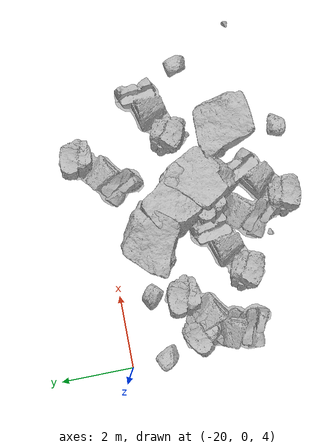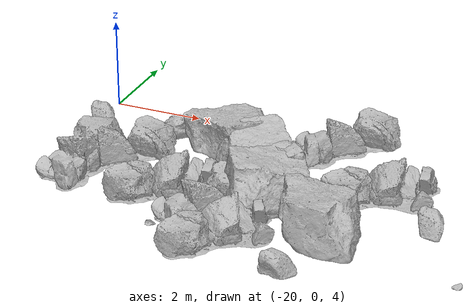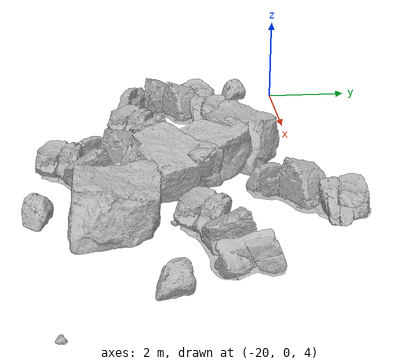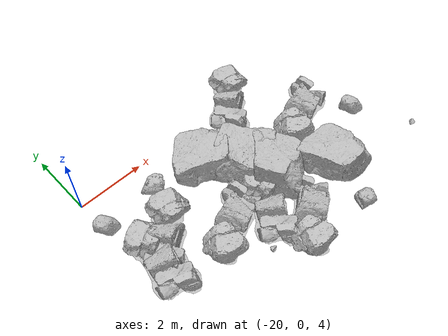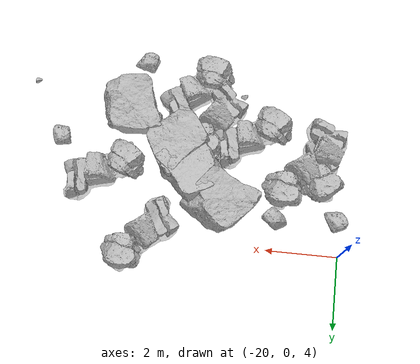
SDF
<sdf version="1.7">
 <world name="marsyard">
  <model name="Rock_2">
   <static>true</static>
   <pose>-15.3373 -2.6823 4.0000 0.0000 0.0000 -0.1930</pose>
   <link name="link">
    <visual name="visual">
     <geometry><mesh><uri>package://rock_generator/rocks_ws/rock_1/meshes/rock_1.stl</uri></mesh></geometry>
    </visual>
    <collision name="collision">
     <geometry><mesh><uri>package://rock_generator/rocks_ws/rock_1/meshes/rock_1.stl</uri></mesh></geometry>
    </collision>
   </link>
  </model>
  <model name="Rock_6">
   <static>true</static>
   <pose>-16.6713 -2.3727 4.0000 0.0000 0.0000 2.2812</pose>
   <link name="link">
    <visual name="visual">
     <geometry><mesh><uri>package://rock_generator/rocks_ws/rock_9/meshes/rock_9.stl</uri></mesh></geometry>
    </visual>
    <collision name="collision">
     <geometry><mesh><uri>package://rock_generator/rocks_ws/rock_9/meshes/rock_9.stl</uri></mesh></geometry>
    </collision>
   </link>
  </model>
  <model name="Rock_55">
   <static>true</static>
   <pose>-14.0027 -3.7306 4.0000 0.0000 0.0000 0.8740</pose>
   <link name="link">
    <visual name="visual">
     <geometry><mesh><uri>package://rock_generator/rocks_ws/rock_1/meshes/rock_1.stl</uri></mesh></geometry>
    </visual>
    <collision name="collision">
     <geometry><mesh><uri>package://rock_generator/rocks_ws/rock_1/meshes/rock_1.stl</uri></mesh></geometry>
    </collision>
   </link>
  </model>
  <model name="Rock_72">
   <static>true</static>
   <pose>-15.6774 -4.5340 4.0000 0.0000 0.0000 0.8496</pose>
   <link name="link">
    <visual name="visual">
     <geometry><mesh><uri>package://rock_generator/rocks_ws/rock_2/meshes/rock_2.stl</uri></mesh></geometry>
    </visual>
    <collision name="collision">
     <geometry><mesh><uri>package://rock_generator/rocks_ws/rock_2/meshes/rock_2.stl</uri></mesh></geometry>
    </collision>
   </link>
  </model>
  <model name="Rock_76">
   <static>true</static>
   <pose>-11.9440 -2.7662 4.0000 0.0000 0.0000 2.8580</pose>
   <link name="link">
    <visual name="visual">
     <geometry><mesh><uri>package://rock_generator/rocks_ws/rock_3/meshes/rock_3.stl</uri></mesh></geometry>
    </visual>
    <collision name="collision">
     <geometry><mesh><uri>package://rock_generator/rocks_ws/rock_3/meshes/rock_3.stl</uri></mesh></geometry>
    </collision>
   </link>
  </model>
  <model name="Rock_77">
   <static>true</static>
   <pose>-18.1683 -0.8440 4.0000 0.0000 0.0000 0.3233</pose>
   <link name="link">
    <visual name="visual">
     <geometry><mesh><uri>package://rock_generator/rocks_ws/rock_3/meshes/rock_3.stl</uri></mesh></geometry>
    </visual>
    <collision name="collision">
     <geometry><mesh><uri>package://rock_generator/rocks_ws/rock_3/meshes/rock_3.stl</uri></mesh></geometry>
    </collision>
   </link>
  </model>
  <model name="Rock_110">
   <static>true</static>
   <pose>-13.2644 -1.8583 4.0000 0.0000 0.0000 0.4791</pose>
   <link name="link">
    <visual name="visual">
     <geometry><mesh><uri>package://rock_generator/rocks_ws/rock_2/meshes/rock_2.stl</uri></mesh></geometry>
    </visual>
    <collision name="collision">
     <geometry><mesh><uri>package://rock_generator/rocks_ws/rock_2/meshes/rock_2.stl</uri></mesh></geometry>
    </collision>
   </link>
  </model>
  <model name="Rock_169">
   <static>true</static>
   <pose>-17.3954 -3.2587 4.0000 0.0000 0.0000 0.5388</pose>
   <link name="link">
    <visual name="visual">
     <geometry><mesh><uri>package://rock_generator/rocks_ws/rock_2/meshes/rock_2.stl</uri></mesh></geometry>
    </visual>
    <collision name="collision">
     <geometry><mesh><uri>package://rock_generator/rocks_ws/rock_2/meshes/rock_2.stl</uri></mesh></geometry>
    </collision>
   </link>
  </model>
  <model name="Rock_220">
   <static>true</static>
   <pose>-14.1171 -5.2289 4.0000 0.0000 0.0000 -2.3501</pose>
   <link name="link">
    <visual name="visual">
     <geometry><mesh><uri>package://rock_generator/rocks_ws/rock_3/meshes/rock_3.stl</uri></mesh></geometry>
    </visual>
    <collision name="collision">
     <geometry><mesh><uri>package://rock_generator/rocks_ws/rock_3/meshes/rock_3.stl</uri></mesh></geometry>
    </collision>
   </link>
  </model>
  <model name="Rock_221">
   <static>true</static>
   <pose>-18.7819 -2.2136 4.0000 0.0000 0.0000 -2.3074</pose>
   <link name="link">
    <visual name="visual">
     <geometry><mesh><uri>package://rock_generator/rocks_ws/rock_2/meshes/rock_2.stl</uri></mesh></geometry>
    </visual>
    <collision name="collision">
     <geometry><mesh><uri>package://rock_generator/rocks_ws/rock_2/meshes/rock_2.stl</uri></mesh></geometry>
    </collision>
   </link>
  </model>
  <model name="Rock_222">
   <static>true</static>
   <pose>-15.6669 -1.8722 4.0000 0.0000 0.0000 -1.8735</pose>
   <link name="link">
    <visual name="visual">
     <geometry><mesh><uri>package://rock_generator/rocks_ws/rock_1/meshes/rock_1.stl</uri></mesh></geometry>
    </visual>
    <collision name="collision">
     <geometry><mesh><uri>package://rock_generator/rocks_ws/rock_1/meshes/rock_1.stl</uri></mesh></geometry>
    </collision>
   </link>
  </model>
  <model name="Rock_223">
   <static>true</static>
   <pose>-19.4523 -2.6708 4.0000 0.0000 0.0000 -1.6287</pose>
   <link name="link">
    <visual name="visual">
     <geometry><mesh><uri>package://rock_generator/rocks_ws/rock_2/meshes/rock_2.stl</uri></mesh></geometry>
    </visual>
    <collision name="collision">
     <geometry><mesh><uri>package://rock_generator/rocks_ws/rock_2/meshes/rock_2.stl</uri></mesh></geometry>
    </collision>
   </link>
  </model>
  <model name="Rock_229">
   <static>true</static>
   <pose>-16.4245 -5.1015 4.0000 0.0000 0.0000 -1.9698</pose>
   <link name="link">
    <visual name="visual">
     <geometry><mesh><uri>package://rock_generator/rocks_ws/rock_7/meshes/rock_7.stl</uri></mesh></geometry>
    </visual>
    <collision name="collision">
     <geometry><mesh><uri>package://rock_generator/rocks_ws/rock_7/meshes/rock_7.stl</uri></mesh></geometry>
    </collision>
   </link>
  </model>
  <model name="Rock_253">
   <static>true</static>
   <pose>-10.9408 -4.3700 4.0000 0.0000 0.0000 -3.0957</pose>
   <link name="link">
    <visual name="visual">
     <geometry><mesh><uri>package://rock_generator/rocks_ws/rock_7/meshes/rock_7.stl</uri></mesh></geometry>
    </visual>
    <collision name="collision">
     <geometry><mesh><uri>package://rock_generator/rocks_ws/rock_7/meshes/rock_7.stl</uri></mesh></geometry>
    </collision>
   </link>
  </model>
  <model name="Rock_319">
   <static>true</static>
   <pose>-17.0606 -4.4822 4.0000 0.0000 0.0000 -0.1673</pose>
   <link name="link">
    <visual name="visual">
     <geometry><mesh><uri>package://rock_generator/rocks_ws/rock_7/meshes/rock_7.stl</uri></mesh></geometry>
    </visual>
    <collision name="collision">
     <geometry><mesh><uri>package://rock_generator/rocks_ws/rock_7/meshes/rock_7.stl</uri></mesh></geometry>
    </collision>
   </link>
  </model>
  <model name="Rock_323">
   <static>true</static>
   <pose>-19.2560 -3.4477 4.0000 0.0000 0.0000 1.0591</pose>
   <link name="link">
    <visual name="visual">
     <geometry><mesh><uri>package://rock_generator/rocks_ws/rock_9/meshes/rock_9.stl</uri></mesh></geometry>
    </visual>
    <collision name="collision">
     <geometry><mesh><uri>package://rock_generator/rocks_ws/rock_9/meshes/rock_9.stl</uri></mesh></geometry>
    </collision>
   </link>
  </model>
  <model name="Rock_325">
   <static>true</static>
   <pose>-16.7080 -1.3165 4.0000 0.0000 0.0000 1.6876</pose>
   <link name="link">
    <visual name="visual">
     <geometry><mesh><uri>package://rock_generator/rocks_ws/rock_1/meshes/rock_1.stl</uri></mesh></geometry>
    </visual>
    <collision name="collision">
     <geometry><mesh><uri>package://rock_generator/rocks_ws/rock_1/meshes/rock_1.stl</uri></mesh></geometry>
    </collision>
   </link>
  </model>
  <model name="Rock_366">
   <static>true</static>
   <pose>-16.2324 -3.4883 4.0000 0.0000 0.0000 -2.0011</pose>
   <link name="link">
    <visual name="visual">
     <geometry><mesh><uri>package://rock_generator/rocks_ws/rock_2/meshes/rock_2.stl</uri></mesh></geometry>
    </visual>
    <collision name="collision">
     <geometry><mesh><uri>package://rock_generator/rocks_ws/rock_2/meshes/rock_2.stl</uri></mesh></geometry>
    </collision>
   </link>
  </model>
  <model name="Rock_412">
   <static>true</static>
   <pose>-13.8872 -2.6814 4.0000 0.0000 0.0000 2.4153</pose>
   <link name="link">
    <visual name="visual">
     <geometry><mesh><uri>package://rock_generator/rocks_ws/rock_7/meshes/rock_7.stl</uri></mesh></geometry>
    </visual>
    <collision name="collision">
     <geometry><mesh><uri>package://rock_generator/rocks_ws/rock_7/meshes/rock_7.stl</uri></mesh></geometry>
    </collision>
   </link>
  </model>
  <model name="Rock_441">
   <static>true</static>
   <pose>-19.9048 -1.0374 4.0000 0.0000 0.0000 3.1095</pose>
   <link name="link">
    <visual name="visual">
     <geometry><mesh><uri>package://rock_generator/rocks_ws/rock_3/meshes/rock_3.stl</uri></mesh></geometry>
    </visual>
    <collision name="collision">
     <geometry><mesh><uri>package://rock_generator/rocks_ws/rock_3/meshes/rock_3.stl</uri></mesh></geometry>
    </collision>
   </link>
  </model>
  <model name="Rock_446">
   <static>true</static>
   <pose>-15.9287 -0.9284 4.0000 0.0000 0.0000 -1.6648</pose>
   <link name="link">
    <visual name="visual">
     <geometry><mesh><uri>package://rock_generator/rocks_ws/rock_9/meshes/rock_9.stl</uri></mesh></geometry>
    </visual>
    <collision name="collision">
     <geometry><mesh><uri>package://rock_generator/rocks_ws/rock_9/meshes/rock_9.stl</uri></mesh></geometry>
    </collision>
   </link>
  </model>
  <model name="Rock_470">
   <static>true</static>
   <pose>-14.4628 -0.0077 4.0000 0.0000 0.0000 -2.2861</pose>
   <link name="link">
    <visual name="visual">
     <geometry><mesh><uri>package://rock_generator/rocks_ws/rock_2/meshes/rock_2.stl</uri></mesh></geometry>
    </visual>
    <collision name="collision">
     <geometry><mesh><uri>package://rock_generator/rocks_ws/rock_2/meshes/rock_2.stl</uri></mesh></geometry>
    </collision>
   </link>
  </model>
  <model name="Rock_486">
   <static>true</static>
   <pose>-18.0604 -3.7214 4.0000 0.0000 0.0000 2.1846</pose>
   <link name="link">
    <visual name="visual">
     <geometry><mesh><uri>package://rock_generator/rocks_ws/rock_9/meshes/rock_9.stl</uri></mesh></geometry>
    </visual>
    <collision name="collision">
     <geometry><mesh><uri>package://rock_generator/rocks_ws/rock_9/meshes/rock_9.stl</uri></mesh></geometry>
    </collision>
   </link>
  </model>
 </world>
</sdf>
